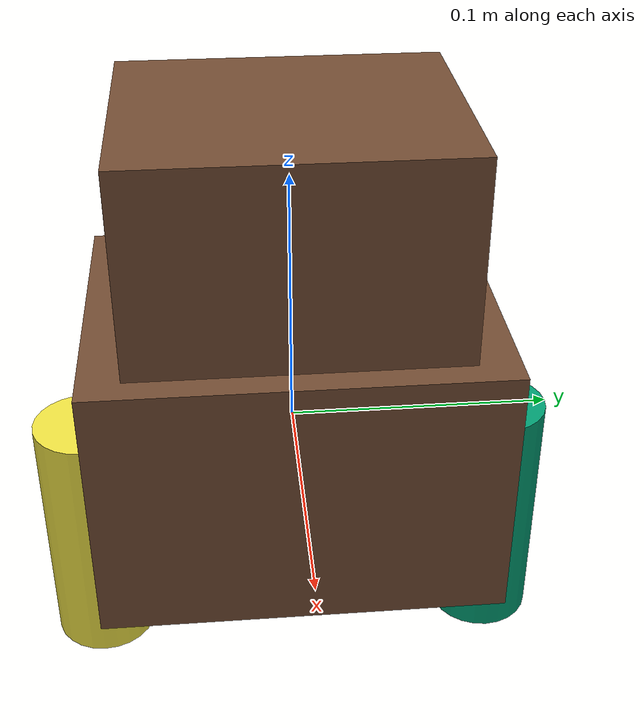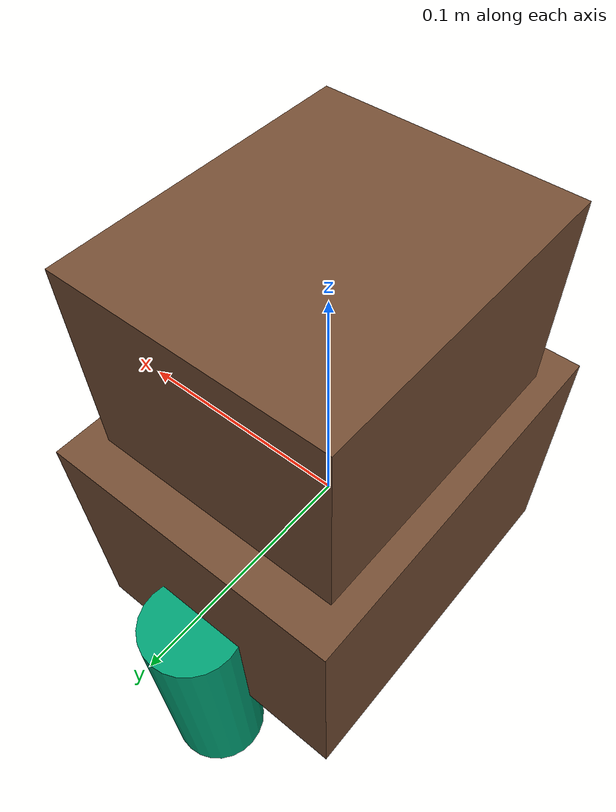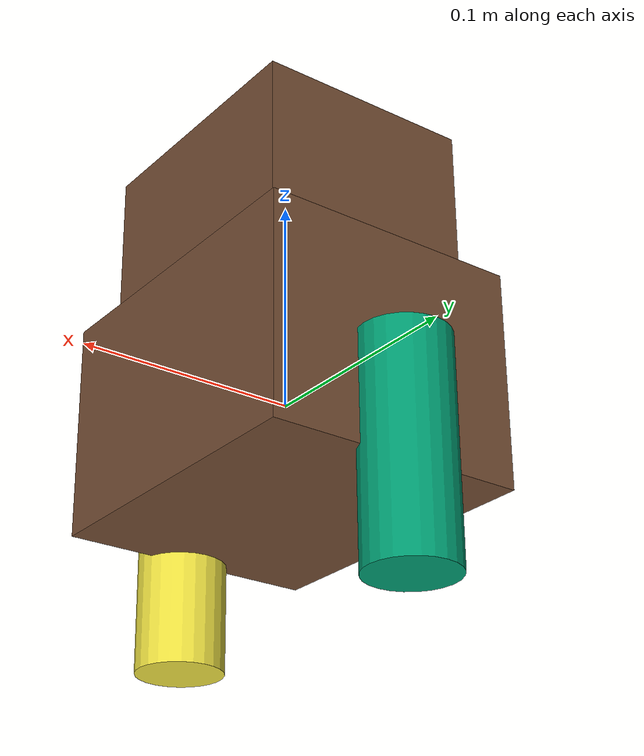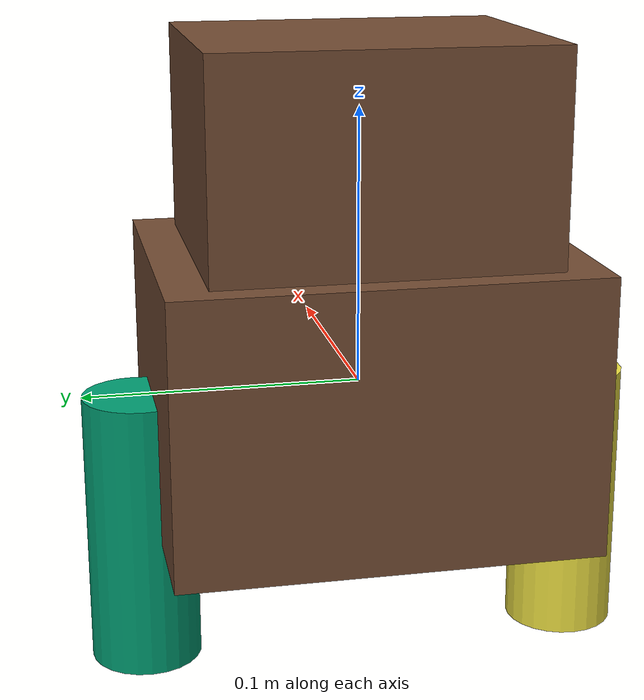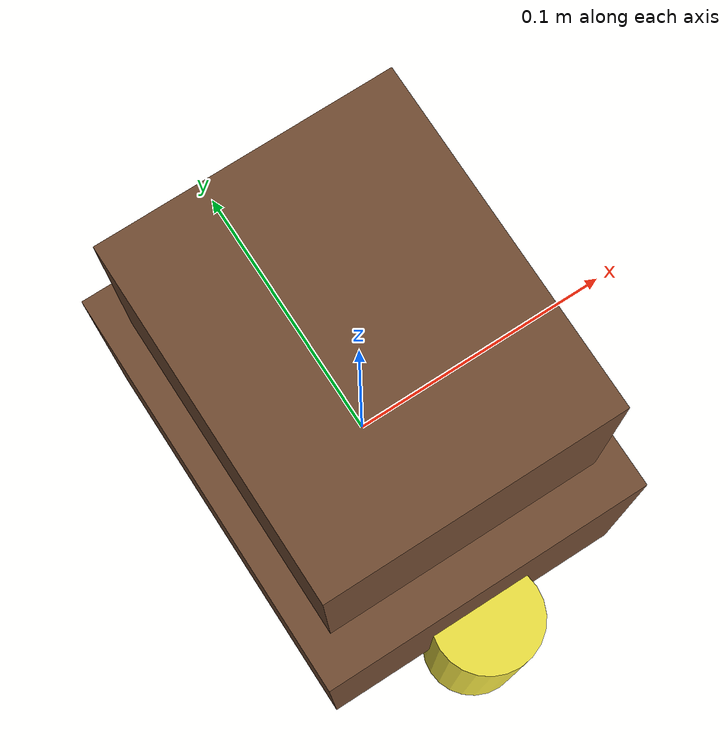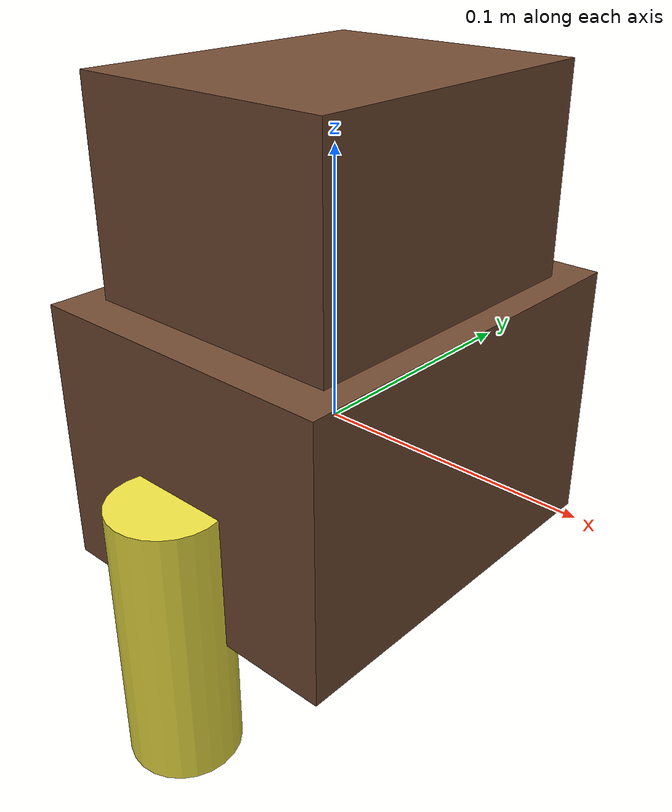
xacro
<?xml version="1.0"?>
<robot xmlns:xacro="http://www.ros.org/wiki/xacro" name="cara">

  <xacro:property name="lower_torso_mass" value="1.0" /> <xacro:property name="upper_torso_mass" value="0.8" /> <xacro:property name="leg_mass"         value="0.2" />
  <xacro:property name="gimbal_mass"      value="0.05" />

  <material name="bear_brown"> <color rgba="0.45 0.3 0.2 1.0"/> </material>

  <link name="base_link"/>

  <link name="lower_torso">
    <inertial>
      <mass value="${lower_torso_mass}"/>
      <origin xyz="0 0 -0.05" rpy="0 0 0"/>
      <inertia ixx="0.005" iyy="0.005" izz="0.005"/>
    </inertial>
    <visual>
      <geometry><box size="0.12 0.15 0.1"/></geometry>
      <material name="bear_brown"/>
    </visual>
    <collision>
      <geometry><box size="0.12 0.15 0.1"/></geometry>
    </collision>
  </link>

  <joint name="base_to_lower" type="fixed">
    <parent link="base_link"/>
    <child link="lower_torso"/>
  </joint>

  <xacro:macro name="cara_leg" params="prefix side_sign">
    <link name="thigh_${prefix}">
      <inertial>
        <mass value="${leg_mass}"/>
        <origin xyz="0 0 -0.05"/>
        <inertia ixx="0.001" iyy="0.001" izz="0.001"/>
      </inertial>
      <visual>
        <geometry><cylinder radius="0.02" length="0.1"/></geometry>
      </visual>
      <collision>
        <geometry><cylinder radius="0.02" length="0.1"/></geometry>
      </collision>
    </link>

    <joint name="hip_pitch_${prefix}" type="revolute">
      <parent link="lower_torso"/>
      <child link="thigh_${prefix}"/>
      <origin xyz="0.0 ${side_sign * 0.08} -0.05" rpy="0 0 0"/>
      <axis xyz="0 1 0"/>
      <limit lower="-1.0" upper="1.0" effort="3.0" velocity="6.0"/>
      <dynamics damping="0.1" friction="0.1"/>
    </joint>
  </xacro:macro>

  <xacro:cara_leg prefix="l" side_sign="1" />
  <xacro:cara_leg prefix="r" side_sign="-1" />

  <link name="waist_intermediate">
    <inertial>
      <mass value="${gimbal_mass}"/>
      <inertia ixx="0.0001" iyy="0.0001" izz="0.0001"/>
    </inertial>
  </link>

  <joint name="waist_yaw" type="revolute">
    <parent link="lower_torso"/>
    <child link="waist_intermediate"/>
    <origin xyz="0 0 0.05" rpy="0 0 0"/>
    <axis xyz="0 0 1"/>
    <limit lower="-0.78" upper="0.78" effort="2.0" velocity="4.0"/>
  </joint>

  <link name="upper_torso">
    <inertial>
      <mass value="${upper_torso_mass}"/>
      <origin xyz="0 0 0.1" rpy="0 0 0"/>
      <inertia ixx="0.008" iyy="0.008" izz="0.006"/>
    </inertial>
    <visual>
      <geometry><box size="0.1 0.12 0.15"/></geometry>
      <material name="bear_brown"/>
    </visual>
    <collision>
      <geometry><box size="0.1 0.12 0.15"/></geometry>
    </collision>
  </link>

  <joint name="waist_pitch" type="revolute">
    <parent link="waist_intermediate"/>
    <child link="upper_torso"/>
    <origin xyz="0 0 0" rpy="0 0 0"/>
    <axis xyz="0 1 0"/>
    <limit lower="-0.78" upper="0.78" effort="3.5" velocity="4.0"/>
  </joint>

</robot>
